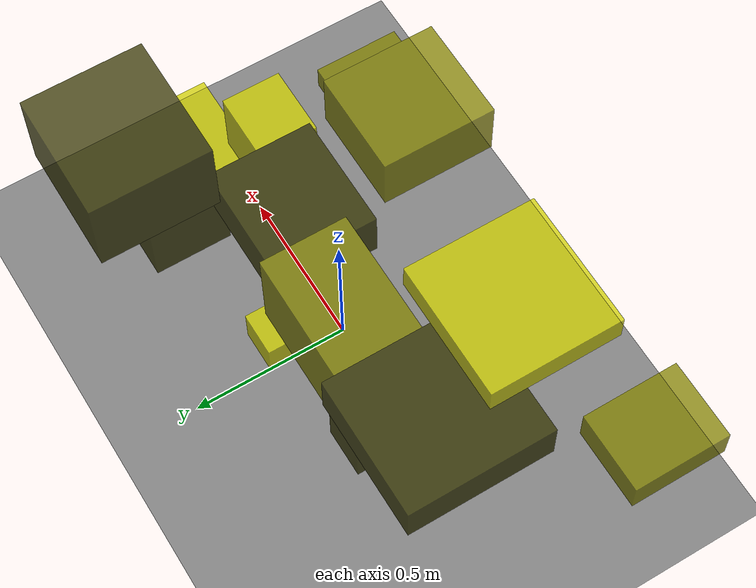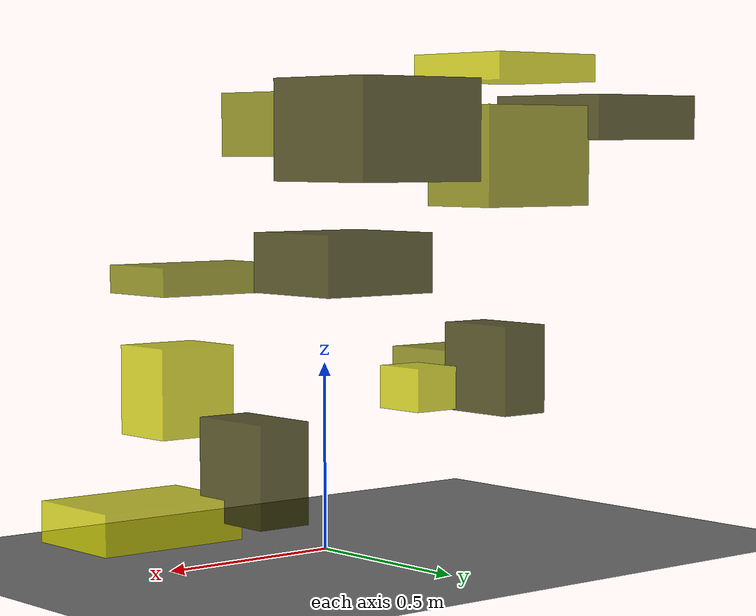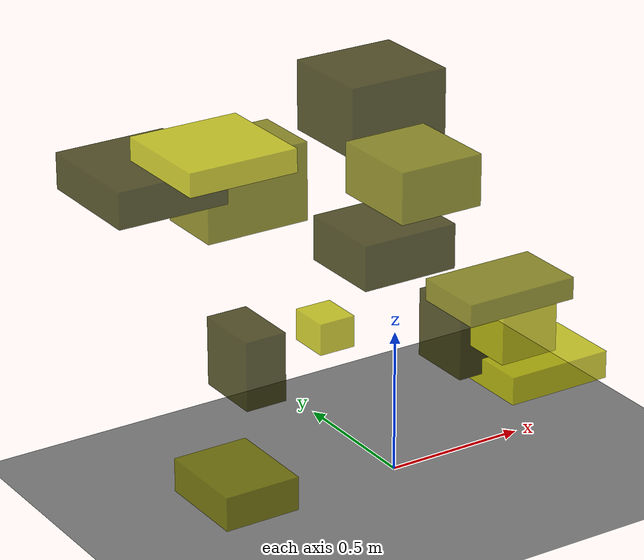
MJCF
<?xml version="1.0"?>
<mujoco model="obstacle_scene">
  <compiler angle="radian" coordinate="local"/>
  <option timestep="0.001" gravity="0 0 -9.81"/>

  <asset>
    <material name="obstacle_mat" rgba="0.8 0.8 0.0 0.8"/>
    <material name="ground_mat" rgba="0.5 0.5 0.5 1"/>
  </asset>

  <worldbody>
    <!-- Ground plane -->
    <geom name="ground" type="plane" size="3 3 0.1" material="ground_mat"/>

    <!-- Obstacles -->
    <body name="obstacle_0" pos="0.451817 0.286273 0.285099">
      <geom name="obs_0" type="box" size="0.072673 0.123683 0.125971" rgba="0.2 0.2 0.0 0.8"/>
    </body>
    <body name="obstacle_1" pos="0.198822 -0.299261 0.720603">
      <geom name="obs_1" type="box" size="0.200077 0.124869 0.037702" rgba="0.5 0.5 0.0 0.8"/>
    </body>
    <body name="obstacle_2" pos="0.451005 -0.037987 0.457359">
      <geom name="obs_2" type="box" size="0.109351 0.092133 0.114198" rgba="0.8 0.8 0.0 0.8"/>
    </body>
    <body name="obstacle_3" pos="-0.478051 0.150065 0.469820">
      <geom name="obs_3" type="box" size="0.073529 0.121552 0.121218" rgba="0.2 0.2 0.0 0.8"/>
    </body>
    <body name="obstacle_4" pos="-0.061595 -0.183495 1.135567">
      <geom name="obs_4" type="box" size="0.147487 0.158786 0.086656" rgba="0.5 0.5 0.0 0.8"/>
    </body>
    <body name="obstacle_5" pos="-0.712256 -0.062349 1.300123">
      <geom name="obs_5" type="box" size="0.187111 0.179819 0.038963" rgba="0.8 0.8 0.0 0.8"/>
    </body>
    <body name="obstacle_6" pos="-0.816415 0.201467 1.156692">
      <geom name="obs_6" type="box" size="0.191118 0.199268 0.060925" rgba="0.2 0.2 0.0 0.8"/>
    </body>
    <body name="obstacle_7" pos="-0.445638 0.238926 1.051461">
      <geom name="obs_7" type="box" size="0.184027 0.120592 0.134889" rgba="0.5 0.5 0.0 0.8"/>
    </body>
    <body name="obstacle_8" pos="0.669072 0.121420 0.165456">
      <geom name="obs_8" type="box" size="0.197926 0.141333 0.050691" rgba="0.8 0.8 0.0 0.8"/>
    </body>
    <body name="obstacle_9" pos="0.031848 0.116065 0.773586">
      <geom name="obs_9" type="box" size="0.173986 0.155264 0.078826" rgba="0.2 0.2 0.0 0.8"/>
    </body>
    <body name="obstacle_10" pos="-0.889821 -0.464573 0.404590">
      <geom name="obs_10" type="box" size="0.125508 0.153177 0.055250" rgba="0.5 0.5 0.0 0.8"/>
    </body>
    <body name="obstacle_11" pos="-0.111200 0.250653 0.448035">
      <geom name="obs_11" type="box" size="0.065816 0.075639 0.055994" rgba="0.8 0.8 0.0 0.8"/>
    </body>
    <body name="obstacle_12" pos="0.224703 0.485072 1.116342">
      <geom name="obs_12" type="box" size="0.184962 0.169812 0.124860" rgba="0.2 0.2 0.0 0.8"/>
    </body>
  </worldbody>
</mujoco>
